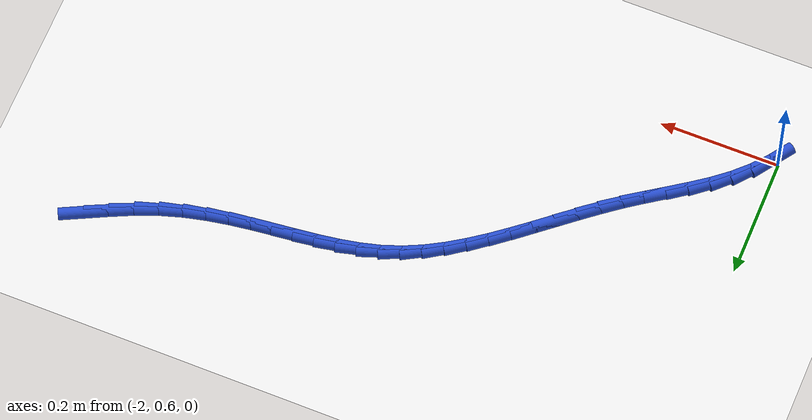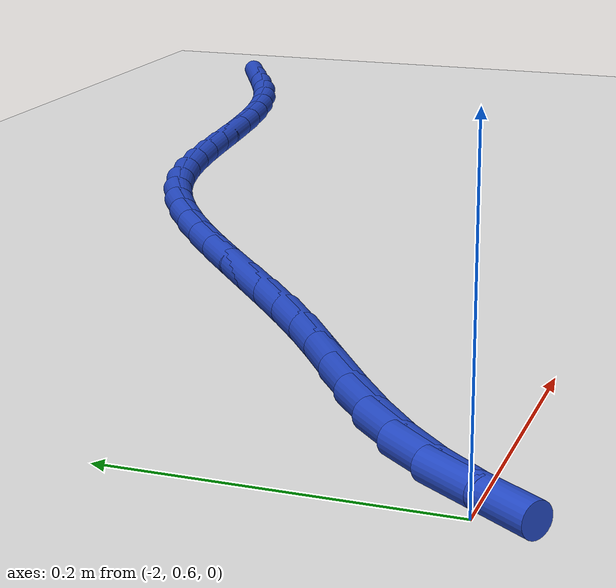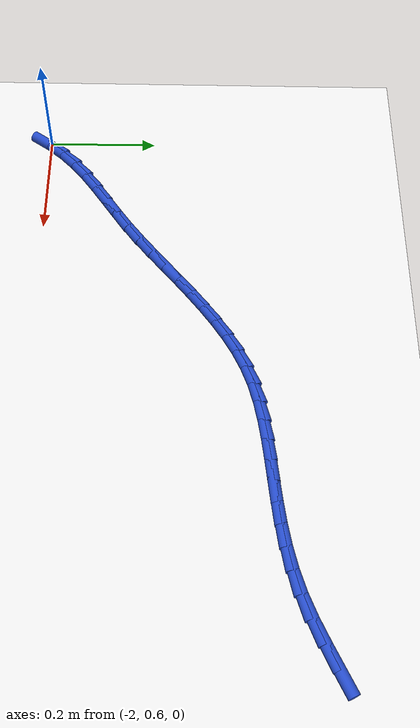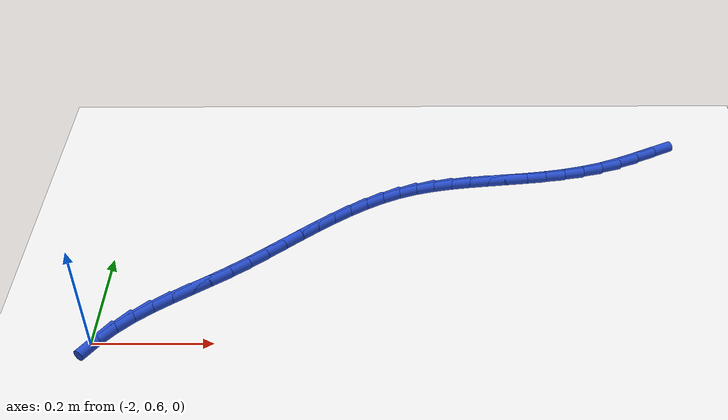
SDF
<sdf version="1.6">
 <world name="default">
  <model name="ground_plane">
   <static>1</static>
   <link name="link">
    <collision name="collision">
     <geometry><plane><normal>0 0 1</normal><size>100 100</size></plane></geometry>
     <surface><friction><ode><mu>100</mu><mu2>50</mu2></ode></friction></surface>
    </collision>
    <visual name="visual">
     <cast_shadows>0</cast_shadows>
     <geometry><plane><normal>0 0 1</normal><size>100 100</size></plane></geometry>
     <material>
      <script><uri>file://media/materials/scripts/gazebo.material</uri><name>Gazebo/WhiteGlow</name></script>
     </material>
    </visual>
   </link>
  </model>
  <model name="line">
   <link name="link_47">
    <pose>-1.0063014607087177 1.0966602418362992 0.01 0 1.57 0.46081317499080354</pose>
    <collision name="collision">
     <geometry><cylinder><radius>0.01</radius><length>0.08</length></cylinder></geometry>
    </collision>
    <visual name="visual">
     <material>
      <script><name>Gazebo/Blue</name><uri>file://media/materials/scripts/gazebo.material</uri></script>
     </material>
     <geometry><cylinder><radius>0.01</radius><length>0.08</length></cylinder></geometry>
    </visual>
   </link>
   <link name="link_48">
    <pose>-1.0424715679702994 1.0787031594129544 0.01 0 1.57 0.43752597725870535</pose>
    <collision name="collision">
     <geometry><cylinder><radius>0.01</radius><length>0.08</length></cylinder></geometry>
    </collision>
    <visual name="visual">
     <material>
      <script><name>Gazebo/Blue</name><uri>file://media/materials/scripts/gazebo.material</uri></script>
     </material>
     <geometry><cylinder><radius>0.01</radius><length>0.08</length></cylinder></geometry>
    </visual>
   </link>
   <link name="link_49">
    <pose>-1.0792321387340058 1.0615079728477146 0.01 0 1.57 0.3810806210362158</pose>
    <collision name="collision">
     <geometry><cylinder><radius>0.01</radius><length>0.08</length></cylinder></geometry>
    </collision>
    <visual name="visual">
     <material>
      <script><name>Gazebo/Blue</name><uri>file://media/materials/scripts/gazebo.material</uri></script>
     </material>
     <geometry><cylinder><radius>0.01</radius><length>0.08</length></cylinder></geometry>
    </visual>
   </link>
   <link name="link_50">
    <pose>-1.1162616862994799 1.046671481920214 0.01 0 1.57 0.303224469950522</pose>
    <collision name="collision">
     <geometry><cylinder><radius>0.01</radius><length>0.08</length></cylinder></geometry>
    </collision>
    <visual name="visual">
     <material>
      <script><name>Gazebo/Blue</name><uri>file://media/materials/scripts/gazebo.material</uri></script>
     </material>
     <geometry><cylinder><radius>0.01</radius><length>0.08</length></cylinder></geometry>
    </visual>
   </link>
   <link name="link_51">
    <pose>-1.1533111627913597 1.035079708272695 0.01 0 1.57 0.23408802881667748</pose>
    <collision name="collision">
     <geometry><cylinder><radius>0.01</radius><length>0.08</length></cylinder></geometry>
    </collision>
    <visual name="visual">
     <material>
      <script><name>Gazebo/Blue</name><uri>file://media/materials/scripts/gazebo.material</uri></script>
     </material>
     <geometry><cylinder><radius>0.01</radius><length>0.08</length></cylinder></geometry>
    </visual>
   </link>
   <link name="link_52">
    <pose>-1.1902693083842475 1.0262666812488401 0.01 0 1.57 0.1789597366316025</pose>
    <collision name="collision">
     <geometry><cylinder><radius>0.01</radius><length>0.08</length></cylinder></geometry>
    </collision>
    <visual name="visual">
     <material>
      <script><name>Gazebo/Blue</name><uri>file://media/materials/scripts/gazebo.material</uri></script>
     </material>
     <geometry><cylinder><radius>0.01</radius><length>0.08</length></cylinder></geometry>
    </visual>
   </link>
   <link name="link_53">
    <pose>-1.2270402970044634 1.019614992433661 0.01 0 1.57 0.13908084169282445</pose>
    <collision name="collision">
     <geometry><cylinder><radius>0.01</radius><length>0.08</length></cylinder></geometry>
    </collision>
    <visual name="visual">
     <material>
      <script><name>Gazebo/Blue</name><uri>file://media/materials/scripts/gazebo.material</uri></script>
     </material>
     <geometry><cylinder><radius>0.01</radius><length>0.08</length></cylinder></geometry>
    </visual>
   </link>
   <link name="link_54">
    <pose>-1.2635283025783266 1.0145072334121663 0.01 0 1.57 0.11528084787527913</pose>
    <collision name="collision">
     <geometry><cylinder><radius>0.01</radius><length>0.08</length></cylinder></geometry>
    </collision>
    <visual name="visual">
     <material>
      <script><name>Gazebo/Blue</name><uri>file://media/materials/scripts/gazebo.material</uri></script>
     </material>
     <geometry><cylinder><radius>0.01</radius><length>0.08</length></cylinder></geometry>
    </visual>
   </link>
   <link name="link_55">
    <pose>-1.2996374990321566 1.0103259957693682 0.01 0 1.57 0.10823738652672818</pose>
    <collision name="collision">
     <geometry><cylinder><radius>0.01</radius><length>0.08</length></cylinder></geometry>
    </collision>
    <visual name="visual">
     <material>
      <script><name>Gazebo/Blue</name><uri>file://media/materials/scripts/gazebo.material</uri></script>
     </material>
     <geometry><cylinder><radius>0.01</radius><length>0.08</length></cylinder></geometry>
    </visual>
   </link>
   <link name="link_56">
    <pose>-1.3352720602922732 1.0064538710902768 0.01 0 1.57 0.1186621247251264</pose>
    <collision name="collision">
     <geometry><cylinder><radius>0.01</radius><length>0.08</length></cylinder></geometry>
    </collision>
    <visual name="visual">
     <material>
      <script><name>Gazebo/Blue</name><uri>file://media/materials/scripts/gazebo.material</uri></script>
     </material>
     <geometry><cylinder><radius>0.01</radius><length>0.08</length></cylinder></geometry>
    </visual>
   </link>
   <link name="link_57">
    <pose>-1.3703361602849955 1.0022734509599025 0.01 0 1.57 0.14736713254396594</pose>
    <collision name="collision">
     <geometry><cylinder><radius>0.01</radius><length>0.08</length></cylinder></geometry>
    </collision>
    <visual name="visual">
     <material>
      <script><name>Gazebo/Blue</name><uri>file://media/materials/scripts/gazebo.material</uri></script>
     </material>
     <geometry><cylinder><radius>0.01</radius><length>0.08</length></cylinder></geometry>
    </visual>
   </link>
   <link name="link_58">
    <pose>-1.404733972936643 0.9971673269632568 0.01 0 1.57 0.1951675540446862</pose>
    <collision name="collision">
     <geometry><cylinder><radius>0.01</radius><length>0.08</length></cylinder></geometry>
    </collision>
    <visual name="visual">
     <material>
      <script><name>Gazebo/Blue</name><uri>file://media/materials/scripts/gazebo.material</uri></script>
     </material>
     <geometry><cylinder><radius>0.01</radius><length>0.08</length></cylinder></geometry>
    </visual>
   </link>
   <link name="link_59">
    <pose>-1.438369672173536 0.99051809068535 0.01 0 1.57 0.2625672876067255</pose>
    <collision name="collision">
     <geometry><cylinder><radius>0.01</radius><length>0.08</length></cylinder></geometry>
    </collision>
    <visual name="visual">
     <material>
      <script><name>Gazebo/Blue</name><uri>file://media/materials/scripts/gazebo.material</uri></script>
     </material>
     <geometry><cylinder><radius>0.01</radius><length>0.08</length></cylinder></geometry>
    </visual>
   </link>
   <link name="link_60">
    <pose>-1.4711474319219933 0.9817083337111924 0.01 0 1.57 0.34900589650083336</pose>
    <collision name="collision">
     <geometry><cylinder><radius>0.01</radius><length>0.08</length></cylinder></geometry>
    </collision>
    <visual name="visual">
     <material>
      <script><name>Gazebo/Blue</name><uri>file://media/materials/scripts/gazebo.material</uri></script>
     </material>
     <geometry><cylinder><radius>0.01</radius><length>0.08</length></cylinder></geometry>
    </visual>
   </link>
   <link name="link_61">
    <pose>-1.5029729566468835 0.9701269508080823 0.01 0 1.57 0.44118302864099646</pose>
    <collision name="collision">
     <geometry><cylinder><radius>0.01</radius><length>0.08</length></cylinder></geometry>
    </collision>
    <visual name="visual">
     <material>
      <script><name>Gazebo/Blue</name><uri>file://media/materials/scripts/gazebo.material</uri></script>
     </material>
     <geometry><cylinder><radius>0.01</radius><length>0.08</length></cylinder></geometry>
    </visual>
   </link>
   <link name="link_62">
    <pose>-1.5338455038266354 0.9555481140028372 0.01 0 1.57 0.5196706058859099</pose>
    <collision name="collision">
     <geometry><cylinder><radius>0.01</radius><length>0.08</length></cylinder></geometry>
    </collision>
    <visual name="visual">
     <material>
      <script><name>Gazebo/Blue</name><uri>file://media/materials/scripts/gazebo.material</uri></script>
     </material>
     <geometry><cylinder><radius>0.01</radius><length>0.08</length></cylinder></geometry>
    </visual>
   </link>
   <link name="link_63">
    <pose>-1.5639103362638402 0.9383472857460565 0.01 0 1.57 0.5829279601623156</pose>
    <collision name="collision">
     <geometry><cylinder><radius>0.01</radius><length>0.08</length></cylinder></geometry>
    </collision>
    <visual name="visual">
     <material>
      <script><name>Gazebo/Blue</name><uri>file://media/materials/scripts/gazebo.material</uri></script>
     </material>
     <geometry><cylinder><radius>0.01</radius><length>0.08</length></cylinder></geometry>
    </visual>
   </link>
   <link name="link_64">
    <pose>-1.5933253937488618 0.9189521358403244 0.01 0 1.57 0.6316561434028991</pose>
    <collision name="collision">
     <geometry><cylinder><radius>0.01</radius><length>0.08</length></cylinder></geometry>
    </collision>
    <visual name="visual">
     <material>
      <script><name>Gazebo/Blue</name><uri>file://media/materials/scripts/gazebo.material</uri></script>
     </material>
     <geometry><cylinder><radius>0.01</radius><length>0.08</length></cylinder></geometry>
    </visual>
   </link>
   <link name="link_65">
    <pose>-1.6222486160720644 0.8977903340882265 0.01 0 1.57 0.6667849364176438</pose>
    <collision name="collision">
     <geometry><cylinder><radius>0.01</radius><length>0.08</length></cylinder></geometry>
    </collision>
    <visual name="visual">
     <material>
      <script><name>Gazebo/Blue</name><uri>file://media/materials/scripts/gazebo.material</uri></script>
     </material>
     <geometry><cylinder><radius>0.01</radius><length>0.08</length></cylinder></geometry>
    </visual>
   </link>
   <link name="link_66">
    <pose>-1.6508379430238116 0.8752895502923481 0.01 0 1.57 0.6891937941548922</pose>
    <collision name="collision">
     <geometry><cylinder><radius>0.01</radius><length>0.08</length></cylinder></geometry>
    </collision>
    <visual name="visual">
     <material>
      <script><name>Gazebo/Blue</name><uri>file://media/materials/scripts/gazebo.material</uri></script>
     </material>
     <geometry><cylinder><radius>0.01</radius><length>0.08</length></cylinder></geometry>
    </visual>
   </link>
   <link name="link_67">
    <pose>-1.6792513143944692 0.8518774542552737 0.01 0 1.57 0.6995602121632418</pose>
    <collision name="collision">
     <geometry><cylinder><radius>0.01</radius><length>0.08</length></cylinder></geometry>
    </collision>
    <visual name="visual">
     <material>
      <script><name>Gazebo/Blue</name><uri>file://media/materials/scripts/gazebo.material</uri></script>
     </material>
     <geometry><cylinder><radius>0.01</radius><length>0.08</length></cylinder></geometry>
    </visual>
   </link>
   <link name="link_68">
    <pose>-1.7076466699744 0.8279817157795881 0.01 0 1.57 0.6982914383562189</pose>
    <collision name="collision">
     <geometry><cylinder><radius>0.01</radius><length>0.08</length></cylinder></geometry>
    </collision>
    <visual name="visual">
     <material>
      <script><name>Gazebo/Blue</name><uri>file://media/materials/scripts/gazebo.material</uri></script>
     </material>
     <geometry><cylinder><radius>0.01</radius><length>0.08</length></cylinder></geometry>
    </visual>
   </link>
   <link name="link_69">
    <pose>-1.736181949553969 0.8040300046678767 0.01 0 1.57 0.6855063519692556</pose>
    <collision name="collision">
     <geometry><cylinder><radius>0.01</radius><length>0.08</length></cylinder></geometry>
    </collision>
    <visual name="visual">
     <material>
      <script><name>Gazebo/Blue</name><uri>file://media/materials/scripts/gazebo.material</uri></script>
     </material>
     <geometry><cylinder><radius>0.01</radius><length>0.08</length></cylinder></geometry>
    </visual>
   </link>
   <link name="link_70">
    <pose>-1.76501509292354 0.7804499907227247 0.01 0 1.57 0.6610507188350221</pose>
    <collision name="collision">
     <geometry><cylinder><radius>0.01</radius><length>0.08</length></cylinder></geometry>
    </collision>
    <visual name="visual">
     <material>
      <script><name>Gazebo/Blue</name><uri>file://media/materials/scripts/gazebo.material</uri></script>
     </material>
     <geometry><cylinder><radius>0.01</radius><length>0.08</length></cylinder></geometry>
    </visual>
   </link>
   <link name="link_71">
    <pose>-1.7943040398734773 0.7576693437467167 0.01 0 1.57 0.626384147757348</pose>
    <collision name="collision">
     <geometry><cylinder><radius>0.01</radius><length>0.08</length></cylinder></geometry>
    </collision>
    <visual name="visual">
     <material>
      <script><name>Gazebo/Blue</name><uri>file://media/materials/scripts/gazebo.material</uri></script>
     </material>
     <geometry><cylinder><radius>0.01</radius><length>0.08</length></cylinder></geometry>
    </visual>
   </link>
   <link name="link_72">
    <pose>-1.8241697608329401 0.736058770939046 0.01 0 1.57 0.6030055812669212</pose>
    <collision name="collision">
     <geometry><cylinder><radius>0.01</radius><length>0.08</length></cylinder></geometry>
    </collision>
    <visual name="visual">
     <material>
      <script><name>Gazebo/Blue</name><uri>file://media/materials/scripts/gazebo.material</uri></script>
     </material>
     <geometry><cylinder><radius>0.01</radius><length>0.08</length></cylinder></geometry>
    </visual>
   </link>
   <link name="link_73">
    <pose>-1.8542959111928043 0.7153151619843369 0.01 0 1.57 0.60554564625939</pose>
    <collision name="collision">
     <geometry><cylinder><radius>0.01</radius><length>0.08</length></cylinder></geometry>
    </collision>
    <visual name="visual">
     <material>
      <script><name>Gazebo/Blue</name><uri>file://media/materials/scripts/gazebo.material</uri></script>
     </material>
     <geometry><cylinder><radius>0.01</radius><length>0.08</length></cylinder></geometry>
    </visual>
   </link>
   <link name="link_74">
    <pose>-1.8840803825407086 0.6946951000632103 0.01 0 1.57 0.6350295746790727</pose>
    <collision name="collision">
     <geometry><cylinder><radius>0.01</radius><length>0.08</length></cylinder></geometry>
    </collision>
    <visual name="visual">
     <material>
      <script><name>Gazebo/Blue</name><uri>file://media/materials/scripts/gazebo.material</uri></script>
     </material>
     <geometry><cylinder><radius>0.01</radius><length>0.08</length></cylinder></geometry>
    </visual>
   </link>
   <link name="link_75">
    <pose>-1.9129161381880415 0.6734475748400317 0.01 0 1.57 0.6924116914227368</pose>
    <collision name="collision">
     <geometry><cylinder><radius>0.01</radius><length>0.08</length></cylinder></geometry>
    </collision>
    <visual name="visual">
     <material>
      <script><name>Gazebo/Blue</name><uri>file://media/materials/scripts/gazebo.material</uri></script>
     </material>
     <geometry><cylinder><radius>0.01</radius><length>0.08</length></cylinder></geometry>
    </visual>
   </link>
   <link name="link_76">
    <pose>-1.9401961414461906 0.6508215759791649 0.01 0 1.57 0.7777512405550179</pose>
    <collision name="collision">
     <geometry><cylinder><radius>0.01</radius><length>0.08</length></cylinder></geometry>
    </collision>
    <visual name="visual">
     <material>
      <script><name>Gazebo/Blue</name><uri>file://media/materials/scripts/gazebo.material</uri></script>
     </material>
     <geometry><cylinder><radius>0.01</radius><length>0.08</length></cylinder></geometry>
    </visual>
   </link>
   <link name="link_77">
    <pose>-1.9653212258985187 0.6260778419671162 0.01 0 1.57 0.8757045699109465</pose>
    <collision name="collision">
     <geometry><cylinder><radius>0.01</radius><length>0.08</length></cylinder></geometry>
    </collision>
    <visual name="visual">
     <material>
      <script><name>Gazebo/Blue</name><uri>file://media/materials/scripts/gazebo.material</uri></script>
     </material>
     <geometry><cylinder><radius>0.01</radius><length>0.08</length></cylinder></geometry>
    </visual>
   </link>
   <link name="link_78">
    <pose>-1.9879800532113332 0.5989067839835023 0.01 0 1.57 0.9672026139575444</pose>
    <collision name="collision">
     <geometry><cylinder><radius>0.01</radius><length>0.08</length></cylinder></geometry>
    </collision>
    <visual name="visual">
     <material>
      <script><name>Gazebo/Blue</name><uri>file://media/materials/scripts/gazebo.material</uri></script>
     </material>
     <geometry><cylinder><radius>0.01</radius><length>0.08</length></cylinder></geometry>
    </visual>
   </link>
  </model>
 </world>
</sdf>
